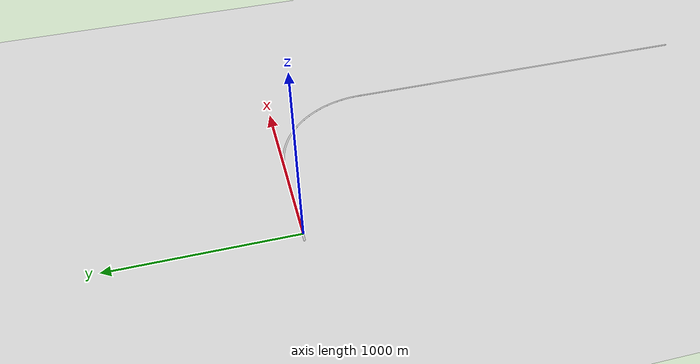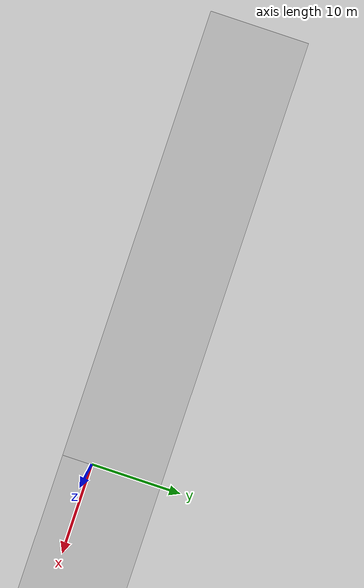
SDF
<sdf version="1.6">
 <world name="default">
  <light name="sun" type="directional">
   <pose>95.0196 103.283 10 0 -0 0</pose>
   <diffuse>0.8 0.8 0.8 1</diffuse>
   <specular>0.2 0.2 0.2 1</specular>
   <attenuation>
    <range>1000</range>
    <constant>0.9</constant>
    <linear>0.01</linear>
    <quadratic>0.001</quadratic>
   </attenuation>
   <direction>-0.5 0.1 -0.9</direction>
  </light>
  <gravity>0 0 -9.8</gravity>
  <magnetic_field>6e-06 2.3e-05 -4.2e-05</magnetic_field>
  <atmosphere type="adiabatic"/>
  <physics name="default_physics" default="0" type="ode">
   <max_step_size>0.001</max_step_size>
   <real_time_factor>1</real_time_factor>
   <real_time_update_rate>1000</real_time_update_rate>
  </physics>
  <scene><ambient>0.4 0.4 0.4 1</ambient><background>0.7 0.7 0.7 1</background><shadows>1</shadows></scene>
  <audio><device>default</device></audio>
  <spherical_coordinates>
   <surface_model>EARTH_WGS84</surface_model>
   <latitude_deg>0</latitude_deg>
   <longitude_deg>0</longitude_deg>
   <elevation>0</elevation>
   <heading_deg>0</heading_deg>
  </spherical_coordinates>
  <model name="ground_plane">
   <static>1</static>
   <link name="link">
    <collision name="collision">
     <geometry><plane><normal>0 0 1</normal><size>100 100</size></plane></geometry>
     <surface><friction><ode><mu>100</mu><mu2>50</mu2></ode></friction></surface>
    </collision>
    <visual name="visual">
     <cast_shadows>0</cast_shadows>
     <geometry><plane><normal>0 0 1</normal><size>10000 10000</size></plane></geometry>
     <material>
      <script><uri>file://media/materials/scripts/gazebo.material</uri><name>Gazebo/Grey</name></script>
     </material>
    </visual>
   </link>
  </model>
  <model name="(DS) Straight Road - 50m">
   <static>1</static>
   <link name="link">
    <inertial>
     <mass>1</mass>
     <inertia><ixx>1</ixx><iyy>1</iyy><izz>1</izz><ixy>0</ixy><ixz>0</ixz><iyz>0</iyz></inertia>
    </inertial>
    <collision name="collision">
     <geometry><mesh><uri>model://ds_straight_road_50m/meshes/straight_road_50m.dae</uri></mesh></geometry>
    </collision>
    <visual name="visual">
     <geometry><mesh><uri>model://ds_straight_road_50m/meshes/straight_road_50m.dae</uri></mesh></geometry>
    </visual>
   </link>
   <pose>-25 12.2188 0 0 -0 0</pose>
  </model>
  <model name="(DS) Straight Road - 500m">
   <static>1</static>
   <link name="link">
    <inertial>
     <mass>1</mass>
     <inertia><ixx>1</ixx><iyy>1</iyy><izz>1</izz><ixy>0</ixy><ixz>0</ixz><iyz>0</iyz></inertia>
    </inertial>
    <collision name="collision">
     <geometry><mesh><uri>model://ds_straight_road_500m/meshes/straight_road_500m.dae</uri></mesh></geometry>
    </collision>
    <visual name="visual">
     <geometry><mesh><uri>model://ds_straight_road_500m/meshes/straight_road_500m.dae</uri></mesh></geometry>
    </visual>
   </link>
   <pose>250 12.2188 0 0 -0 0</pose>
  </model>
  <model name="(DS) Right Road - 1000m">
   <static>1</static>
   <link name="link">
    <inertial>
     <mass>1</mass>
     <inertia><ixx>1</ixx><iyy>1</iyy><izz>1</izz><ixy>0</ixy><ixz>0</ixz><iyz>0</iyz></inertia>
    </inertial>
    <collision name="collision">
     <geometry><mesh><uri>model://ds_right_road_1000m/meshes/curved_road_1000m.dae</uri></mesh></geometry>
    </collision>
    <visual name="visual">
     <geometry><mesh><uri>model://ds_right_road_1000m/meshes/curved_road_1000m.dae</uri></mesh></geometry>
    </visual>
   </link>
   <pose>777.665 -269.947 0 0 -0 1.5708</pose>
  </model>
  <model name="(DS) Straight Road - 2000m">
   <static>1</static>
   <link name="link">
    <inertial>
     <mass>1</mass>
     <inertia><ixx>1</ixx><iyy>1</iyy><izz>1</izz><ixy>0</ixy><ixz>0</ixz><iyz>0</iyz></inertia>
    </inertial>
    <collision name="collision">
     <geometry><mesh><uri>model://ds_straight_road_2000m/meshes/straight_road_2000m.dae</uri></mesh></geometry>
    </collision>
    <visual name="visual">
     <geometry><mesh><uri>model://ds_straight_road_2000m/meshes/straight_road_2000m.dae</uri></mesh></geometry>
    </visual>
   </link>
   <pose>1059.83 -1547.61 0 0 0 -1.5708</pose>
  </model>
 </world>
</sdf>
